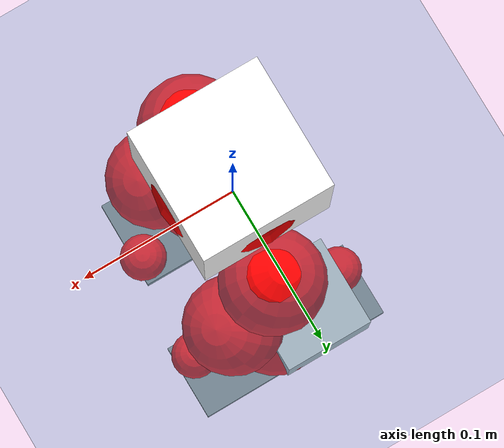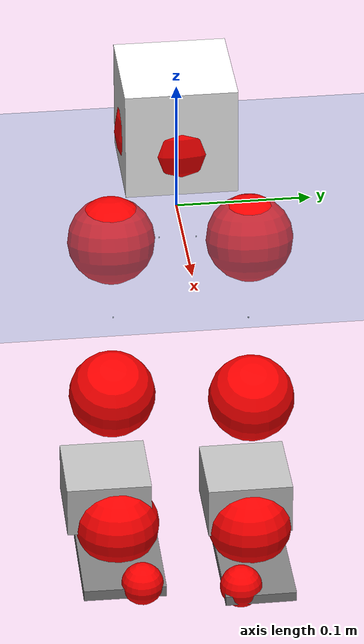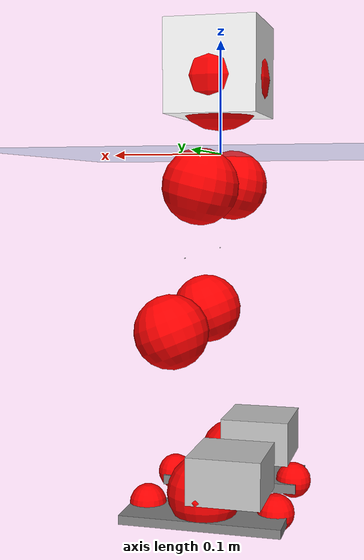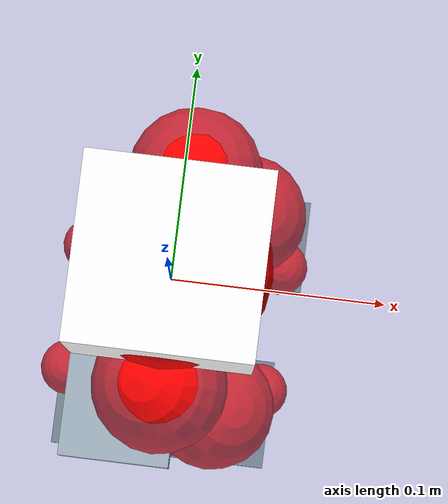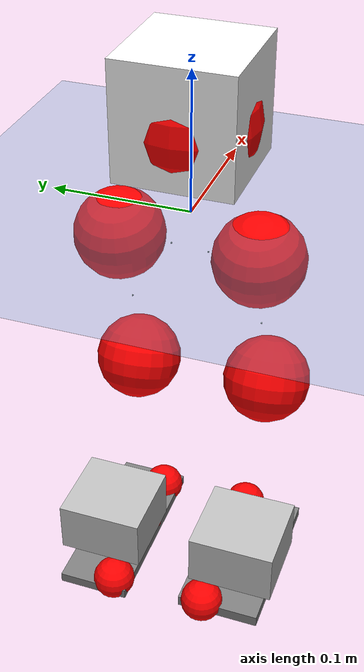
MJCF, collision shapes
<mujoco model="pi_12dof_release_v1">
  <compiler angle="radian" assetdir="assets" balanceinertia="true" inertiafromgeom="false"/>

  <option timestep="0.005" density="1.2" viscosity="2e-05"/>

  <size nkey="1"/>

  <visual>
    <quality shadowsize="8192"/>
    <map shadowclip="0.5"/>
  </visual>

  <default>
    <default class="/">
      <joint armature="0.01" damping="0.01" frictionloss="0.01"/>
      <geom contype="0" conaffinity="0" group="1" solref="-1000 -80"/>
      <site size="0.01 0.005 0.005" group="5"/>
      <general forcelimited="true" biastype="affine" gainprm="20" biasprm="0 -20 -0.5"/>
      <default class="foot">
        <geom size="0.0845 0.036 0.005" type="box" condim="6" group="4" priority="1" friction="0.9 0.2 0.2" solimp="0.015 1 0.005"/>
      </default>
      <default class="reward_collision_sphere">
        <geom group="5" rgba="1 0 0 1"/>
      </default>
    </default>
  </default>

  <asset>
    <texture type="skybox" colorspace="auto" name="//unnamed_texture_0" builtin="gradient" rgb1="0.95 0.95 0.95" rgb2="0.95 0.95 0.95" width="100" height="600"/>
    <texture type="2d" colorspace="auto" name="texplane" builtin="checker" rgb1="0.345 0.575 0.748" rgb2="0.345 0.575 0.748" markrgb="1 1 1" width="512" height="512"/>
    <material name="MatPlane" class="/" texture="texplane" texuniform="true" texrepeat="2 2" specular="0.9"/>
    <mesh name="baselink_1" class="/" file="baselink_1.STL"/>
    <mesh name="r_hip_pitch_link" class="/" file="r_hip_pitch_link.STL"/>
    <mesh name="r_hip_roll_link" class="/" file="r_hip_roll_link.STL"/>
    <mesh name="r_thigh_link" class="/" file="r_thigh_link.STL"/>
    <mesh name="r_calf_link" class="/" file="r_calf_link.STL"/>
    <mesh name="r_ankle_pitch_link" class="/" file="r_ankle_pitch_link.STL"/>
    <mesh name="r_ankle_roll_link" class="/" file="r_ankle_roll_link.STL"/>
    <mesh name="l_hip_pitch_link" class="/" file="l_hip_pitch_link.STL"/>
    <mesh name="l_hip_roll_link" class="/" file="l_hip_roll_link.STL"/>
    <mesh name="l_thigh_link" class="/" file="l_thigh_link.STL"/>
    <mesh name="l_calf_link" class="/" file="l_calf_link.STL"/>
    <mesh name="l_ankle_pitch_link" class="/" file="l_ankle_pitch_link.STL"/>
    <mesh name="l_ankle_roll_link" class="/" file="l_ankle_roll_link.STL"/>
  </asset>

  <worldbody>
    <geom name="floor" class="/" size="100 100 0.125" type="plane" group="0" material="MatPlane"/>
    <light name="toplight_shadow" class="/" pos="0 0 5" dir="0.0990148 0.0990148 -0.990148" type="directional" ambient="0.04 0.04 0.04" diffuse="0.55 0.55 0.55" specular="0.12 0.12 0.12"/>
    <light name="toplight_fill" class="/" pos="0 0 5" dir="0.0990148 0.0990148 -0.990148" type="directional" castshadow="false" ambient="0.04 0.04 0.04" diffuse="0.3 0.3 0.3" specular="0.08 0.08 0.08"/>
    <body name="trunk" pos="0.00122966 -0.00066146 0.00242085" quat="1 0.000472253 -0.000605363 -0.000175693">
      <inertial pos="0.00448771 -0.000733771 0.036298" quat="0.699443 0.0103545 0.0119125 0.714514" mass="1.12812" diaginertia="0.00424114 0.00134328 0.00244756"/>
      <joint name="//unnamed_joint_0" type="free"/>
      <geom name="//unnamed_geom_1" class="/" type="mesh" density="0" rgba="1 1 1 1" mesh="baselink_1"/>
      <geom name="//unnamed_geom_2" class="/" size="0.0409078 0.0409078 0.0409078" pos="0 0 0.0725751" type="box" rgba="1 1 1 1"/>
      <geom name="//unnamed_geom_3" class="reward_collision_sphere" size="0.0449986" pos="0 0 0.0635032"/>
      <site name="imu" class="/" pos="0.0103014 0.00913294 -0.00138387" size="0.00818156"/>
      <camera name="track" class="/" pos="0 -1.38486 0" quat="0.707107 0.707107 0 0" mode="trackcom"/>
      <camera name="ego_camera" class="/" pos="0.0641137 0 0.163294" quat="-0.5 -0.5 0.5 0.5"/>
      <body name="r_hip_pitch_link" pos="-0.00235319 -0.0123732 -0.029934" quat="0.992214 5.19294e-05 -0.124543 6.50907e-05">
        <inertial pos="0.00191093 -0.0390767 0.00195882" quat="-0.0222305 0.712011 -0.0220935 0.701469" mass="0.196665" diaginertia="4.87918e-05 1.4736e-05 4.99436e-05"/>
        <joint name="r_hip_pitch_joint" class="/" pos="0 0 0" axis="-0.00366208 -0.999975 -0.00602902" range="-1.69628 1.19598" armature="0.00782186" damping="0.0102997" frictionloss="0.0088953"/>
        <geom name="//unnamed_geom_4" class="/" type="mesh" density="0" rgba="0.75294 0.75294 0.75294 1" mesh="r_hip_pitch_link"/>
        <geom name="//unnamed_geom_5" class="/" size="0.000409078 0.000409078 0.000409078" type="box" rgba="0.75294 0.75294 0.75294 1"/>
        <body name="r_hip_roll_link" pos="0.0010762 -0.0357543 0.000319497" quat="1 -0.000571928 4.6141e-05 -0.000334935">
          <inertial pos="-0.000807064 -0.000134971 -0.0597614" quat="0.713721 -0.0793899 -0.0742372 0.691946" mass="0.220994" diaginertia="0.000158088 4.47339e-05 7.95986e-05"/>
          <joint name="r_hip_roll_joint" class="/" pos="0 0 0" axis="-0.999993 0.00260719 -0.0026836" range="-0.117841 0.513445" armature="0.00933046" damping="0.000550747" frictionloss="0.00886821"/>
          <geom name="//unnamed_geom_6" class="/" type="mesh" density="0" rgba="0.75294 0.75294 0.75294 1" mesh="r_hip_roll_link"/>
          <geom name="//unnamed_geom_7" class="/" size="0.000409078 0.000409078 0.000409078" type="box" rgba="0.75294 0.75294 0.75294 1"/>
          <geom name="//unnamed_geom_8" class="reward_collision_sphere" size="0.0327262"/>
          <body name="r_thigh_link" pos="-0.00289742 -0.000475267 -0.0607868" quat="1 -0.000485485 -0.000465889 -0.000726091">
            <inertial pos="0.0037851 0.0027479 -0.0418507" quat="0.736558 0.676373 0.00115933 0.000299583" mass="0.0615023" diaginertia="5.8434e-05 1.53154e-05 3.61667e-05"/>
            <joint name="r_thigh_joint" class="/" pos="0 0 0" axis="0.0016487 -0.0021593 -0.999996" stiffness="0.00242443" range="-0.348414 0.582778" armature="0.00922367" damping="0.00790375" frictionloss="0.00743531"/>
            <geom name="//unnamed_geom_9" class="/" type="mesh" density="0" rgba="0.75294 0.75294 0.75294 1" mesh="r_thigh_link"/>
            <geom name="//unnamed_geom_10" class="/" size="0.000409078 0.000409078 0.000409078" type="box" rgba="0.75294 0.75294 0.75294 1"/>
            <body name="r_calf_link" pos="-0.00147586 -0.00254589 -0.0607821" quat="0.947227 -0.000357829 0.320564 0.00020338">
              <inertial pos="-0.00340145 -0.000464856 -0.0642804" quat="0.999952 0.0092834 -0.00258923 0.00170457" mass="0.41671" diaginertia="0.00159089 0.000544225 0.000105542"/>
              <joint name="r_calf_joint" class="/" pos="0 0 0" axis="0.0120614 -0.999867 0.0109942" range="-1.63747 0.690161" armature="0.00809948" damping="0.000381379" frictionloss="0.00840428"/>
              <geom name="//unnamed_geom_11" class="/" type="mesh" density="0" rgba="0.75294 0.75294 0.75294 1" mesh="r_calf_link"/>
              <geom name="//unnamed_geom_12" class="/" size="0.000409078 0.000409078 0.000409078" type="box" rgba="0.75294 0.75294 0.75294 1"/>
              <geom name="//unnamed_geom_13" class="reward_collision_sphere" size="0.0327262"/>
              <body name="r_ankle_pitch_link" pos="-0.00157986 -0.00105468 -0.132647" quat="0.980068 -0.00126189 -0.198657 0.000332639">
                <inertial pos="0.00153106 0.00186744 -0.00315252" quat="-0.000224269 0.705893 0.0104778 0.708241" mass="0.0963" diaginertia="0.000138777 3.51192e-05 7.5521e-05"/>
                <joint name="r_ankle_pitch_joint" class="/" pos="0 0 0" axis="0.00323472 -0.999975 -0.00628918" stiffness="0.00390752" range="-1.33976 0.503734" armature="0.00705075" damping="0" frictionloss="0.00887163"/>
                <geom name="//unnamed_geom_14" class="/" type="mesh" density="0" rgba="0.75294 0.75294 0.75294 1" mesh="r_ankle_pitch_link"/>
                <geom name="//unnamed_geom_15" class="/" size="0.0319081 0.0327262 0.0204539" type="box" rgba="0.75294 0.75294 0.75294 1"/>
                <body name="r_ankle_roll_link" pos="0.0669256 0.00655047 0.000123358" quat="0.999999 -0.000566749 0.000514716 -0.000853501">
                  <inertial pos="-0.0239994 0.00145185 -0.0132751" quat="0.563137 0.431039 0.420898 0.565621" mass="0.282865" diaginertia="0.000525631 0.000165374 0.000173783"/>
                  <joint name="r_ankle_roll_joint" class="/" pos="0 0 0" axis="-1 -0.000557861 -0.000442874" stiffness="0.00817728" range="-0.0871485 0.188506" armature="0.00843781" damping="0" frictionloss="0.00886647"/>
                  <geom name="//unnamed_geom_16" class="/" type="mesh" density="0" rgba="0.75294 0.75294 0.75294 1" mesh="r_ankle_roll_link"/>
                  <geom name="//unnamed_geom_17" class="/" type="mesh" rgba="0.75294 0.75294 0.75294 1" mesh="r_ankle_roll_link"/>
                  <geom name="right_foot" class="foot" size="0.0633707 0.0317701 0.0044038" pos="-0.0435973 0 -0.0399163"/>
                  <geom name="//unnamed_geom_19" class="reward_collision_sphere" size="0.0327262" pos="-0.0427425 0 -0.0181438"/>
                  <geom name="//unnamed_geom_20" class="reward_collision_sphere" size="0.0163631" pos="0.0128227 0.0138486 -0.0362875"/>
                  <geom name="//unnamed_geom_21" class="reward_collision_sphere" size="0.0163631" pos="-0.102582 0.0138486 -0.0362875"/>
                  <site name="right_foot" class="foot" pos="-0.0435973 0 -0.0399163" size="0.00818156"/>
                </body>
              </body>
            </body>
          </body>
        </body>
      </body>
      <body name="l_hip_pitch_link" pos="-4.38251e-05 0.015061 -0.0296919" quat="0.99223 -0.000811693 -0.124416 -0.000800707">
        <inertial pos="-0.00233953 0.0387007 0.00250405" quat="-0.0422278 0.698643 0.0215445 0.713898" mass="0.206029" diaginertia="5.55502e-05 1.68779e-05 6.01642e-05"/>
        <joint name="l_hip_pitch_joint" class="/" pos="0 0 0" axis="-0.00133826 0.999997 0.00211359" range="-1.20085 1.7096" armature="0.00812463" damping="0.00250545" frictionloss="0.00905585"/>
        <geom name="//unnamed_geom_22" class="/" type="mesh" density="0" rgba="0.75294 0.75294 0.75294 1" mesh="l_hip_pitch_link"/>
        <geom name="//unnamed_geom_23" class="/" size="0.000409078 0.000409078 0.000409078" type="box" rgba="0.75294 0.75294 0.75294 1"/>
        <body name="l_hip_roll_link" pos="0.00296247 0.0395275 -0.00242128" quat="1 -0.000238513 3.6895e-05 4.67313e-05">
          <inertial pos="-0.00446082 -0.000662408 -0.0524137" quat="0.699822 -0.0748011 -0.0779162 0.706104" mass="0.204217" diaginertia="0.000142561 4.30507e-05 7.65456e-05"/>
          <joint name="l_hip_roll_joint" class="/" pos="0 0 0" axis="-0.999999 0.000187464 -0.00164327" range="-0.498889 0.0760187" armature="0.00789244" damping="0.0108859" frictionloss="0.00810715"/>
          <geom name="//unnamed_geom_24" class="/" type="mesh" density="0" rgba="0.75294 0.75294 0.75294 1" mesh="l_hip_roll_link"/>
          <geom name="//unnamed_geom_25" class="/" size="0.000409078 0.000409078 0.000409078" type="box" rgba="0.75294 0.75294 0.75294 1"/>
          <geom name="//unnamed_geom_26" class="reward_collision_sphere" size="0.0327262"/>
          <body name="l_thigh_link" pos="-0.00131702 -0.00210772 -0.0625415" quat="1 -5.08245e-05 -5.54709e-05 6.21838e-05">
            <inertial pos="0.0024599 1.89296e-06 -0.0406661" quat="0.678703 0.734402 0.000589731 -0.00396617" mass="0.0608439" diaginertia="5.65868e-05 1.44881e-05 3.63135e-05"/>
            <joint name="l_thigh_joint" class="/" pos="0 0 0" axis="-0.000263199 -0.00109256 -0.999999" range="-0.590519 0.260453" armature="0.00724993" damping="0" frictionloss="0.00705305"/>
            <geom name="//unnamed_geom_27" class="/" type="mesh" density="0" rgba="0.75294 0.75294 0.75294 1" mesh="l_thigh_link"/>
            <geom name="//unnamed_geom_28" class="/" size="0.000409078 0.000409078 0.000409078" type="box" rgba="0.75294 0.75294 0.75294 1"/>
            <body name="l_calf_link" pos="-0.00420587 0.00110698 -0.0651404" quat="0.947777 -0.000221995 0.318934 0.000515142">
              <inertial pos="3.09027e-05 0.000326677 -0.0623999" quat="0.999997 -0.00205514 -0.00149386 0.000516086" mass="0.45093" diaginertia="0.00152314 0.000534428 0.000106751"/>
              <joint name="l_calf_joint" class="/" pos="0 0 0" axis="0.00802542 0.999928 0.00892534" range="-0.635908 1.62327" armature="0.00910257" damping="0" frictionloss="0.00875838"/>
              <geom name="//unnamed_geom_29" class="/" type="mesh" density="0" rgba="0.75294 0.75294 0.75294 1" mesh="l_calf_link"/>
              <geom name="//unnamed_geom_30" class="/" size="0.000409078 0.000409078 0.000409078" type="box" rgba="0.75294 0.75294 0.75294 1"/>
              <geom name="//unnamed_geom_31" class="reward_collision_sphere" size="0.0327262"/>
              <body name="l_ankle_pitch_link" pos="-0.00317333 0.00343033 -0.131145" quat="0.980114 0.000417017 -0.198435 0.000751218">
                <inertial pos="0.00691766 -0.00292789 0.00101872" quat="0.00419799 0.706483 0.00242489 0.707713" mass="0.0965306" diaginertia="0.000134766 3.45084e-05 7.32848e-05"/>
                <joint name="l_ankle_pitch_joint" class="/" pos="0 0 0" axis="-0.000137452 0.999997 0.00226405" range="-0.534827 1.30799" armature="0.00704205" damping="0.022882" frictionloss="0.00810761"/>
                <geom name="//unnamed_geom_32" class="/" type="mesh" density="0" rgba="0.75294 0.75294 0.75294 1" mesh="l_ankle_pitch_link"/>
                <geom name="//unnamed_geom_33" class="/" size="0.0319081 0.0327262 0.0204539" type="box" rgba="0.75294 0.75294 0.75294 1"/>
                <body name="l_ankle_roll_link" pos="0.0657907 0.000531603 0.000168771" quat="0.999998 0.00133596 0.000315521 0.00106676">
                  <inertial pos="-0.0197012 -0.000661016 -0.0122512" quat="0.55799 0.427583 0.432653 0.564475" mass="0.282449" diaginertia="0.000515986 0.000172096 0.000181328"/>
                  <joint name="l_ankle_roll_joint" class="/" pos="0 0 0" axis="-0.999999 -0.00119239 0.000303242" range="-0.126662 0.218642" armature="0.00847261" damping="0" frictionloss="0.00723322"/>
                  <geom name="//unnamed_geom_34" class="/" type="mesh" density="0" rgba="0.75294 0.75294 0.75294 1" mesh="l_ankle_roll_link"/>
                  <geom name="//unnamed_geom_35" class="/" type="mesh" rgba="0.75294 0.75294 0.75294 1" mesh="l_ankle_roll_link"/>
                  <geom name="left_foot" class="foot" size="0.0703495 0.0273602 0.00393045" pos="-0.0435973 0 -0.0399163"/>
                  <geom name="//unnamed_geom_37" class="reward_collision_sphere" size="0.0327262" pos="-0.0427425 0 -0.0181438"/>
                  <geom name="//unnamed_geom_38" class="reward_collision_sphere" size="0.0163631" pos="0.0128227 -0.0138486 -0.0362875"/>
                  <geom name="//unnamed_geom_39" class="reward_collision_sphere" size="0.0163631" pos="-0.102582 -0.0138486 -0.0362875"/>
                  <site name="left_foot" class="foot" pos="-0.0435973 0 -0.0399163" size="0.00818156"/>
                </body>
              </body>
            </body>
          </body>
        </body>
      </body>
    </body>
  </worldbody>

  <contact>
    <pair class="/" geom1="floor" geom2="right_foot" name="//unnamed_contact_1"/>
    <pair class="/" geom1="floor" geom2="left_foot" name="//unnamed_contact_0"/>
  </contact>

  <actuator>
    <general name="r_hip_pitch_joint" class="/" joint="r_hip_pitch_joint" forcerange="-16.788 16.788" gainprm="17.7509" biasprm="0 -17.7509 -0.424216"/>
    <general name="r_hip_roll_joint" class="/" joint="r_hip_roll_joint" forcerange="-19.0956 19.0956" gainprm="17.7509" biasprm="0 -17.7509 -0.424216"/>
    <general name="r_thigh_joint" class="/" joint="r_thigh_joint" forcerange="-17.6215 17.6215" gainprm="17.7509" biasprm="0 -17.7509 -0.424216"/>
    <general name="r_calf_joint" class="/" joint="r_calf_joint" forcerange="-15.0106 15.0106" gainprm="17.7509" biasprm="0 -17.7509 -0.424216"/>
    <general name="r_ankle_pitch_joint" class="/" joint="r_ankle_pitch_joint" forcerange="-15.5175 15.5175" gainprm="17.7509" biasprm="0 -17.7509 -0.424216"/>
    <general name="r_ankle_roll_joint" class="/" joint="r_ankle_roll_joint" forcerange="-18.9984 18.9984" gainprm="17.7509" biasprm="0 -17.7509 -0.424216"/>
    <general name="l_hip_pitch_joint" class="/" joint="l_hip_pitch_joint" forcerange="-17.6765 17.6765" gainprm="17.7509" biasprm="0 -17.7509 -0.424216"/>
    <general name="l_hip_roll_joint" class="/" joint="l_hip_roll_joint" forcerange="-18.4552 18.4552" gainprm="17.7509" biasprm="0 -17.7509 -0.424216"/>
    <general name="l_thigh_joint" class="/" joint="l_thigh_joint" forcerange="-18.4116 18.4116" gainprm="17.7509" biasprm="0 -17.7509 -0.424216"/>
    <general name="l_calf_joint" class="/" joint="l_calf_joint" forcerange="-16.0723 16.0723" gainprm="17.7509" biasprm="0 -17.7509 -0.424216"/>
    <general name="l_ankle_pitch_joint" class="/" joint="l_ankle_pitch_joint" forcerange="-18.4767 18.4767" gainprm="17.7509" biasprm="0 -17.7509 -0.424216"/>
    <general name="l_ankle_roll_joint" class="/" joint="l_ankle_roll_joint" forcerange="-17.7711 17.7711" gainprm="17.7509" biasprm="0 -17.7509 -0.424216"/>
  </actuator>

  <sensor>
    <gyro site="imu" name="imu_angular_velocity"/>
    <velocimeter site="imu" name="imu_linear_velocity"/>
    <framelinvel objtype="site" objname="left_foot" name="left_foot_global_linear_velocity"/>
    <framelinvel objtype="site" objname="right_foot" name="right_foot_global_linear_velocity"/>
  </sensor>

  <keyframe>
    <key name="home" qpos="0 0 0.291 1 0 0 0 0.4 0 0 -0.8 0.4 0 -0.4 0 0 0.8 -0.4 0"/>
  </keyframe>
</mujoco>
